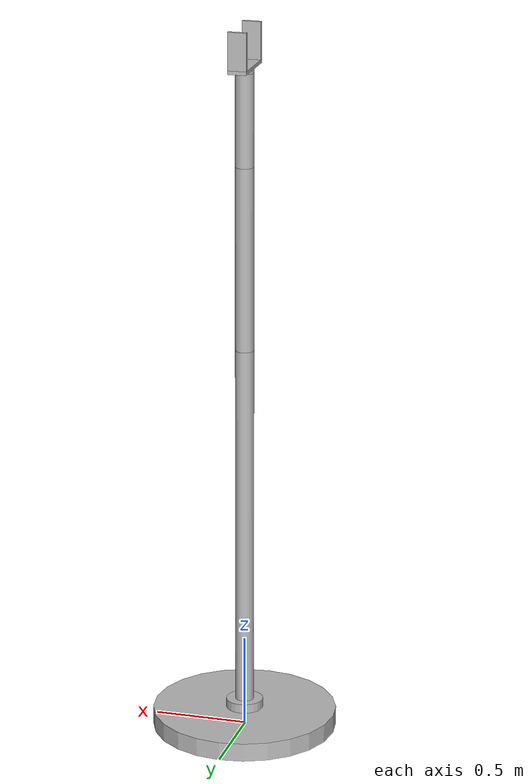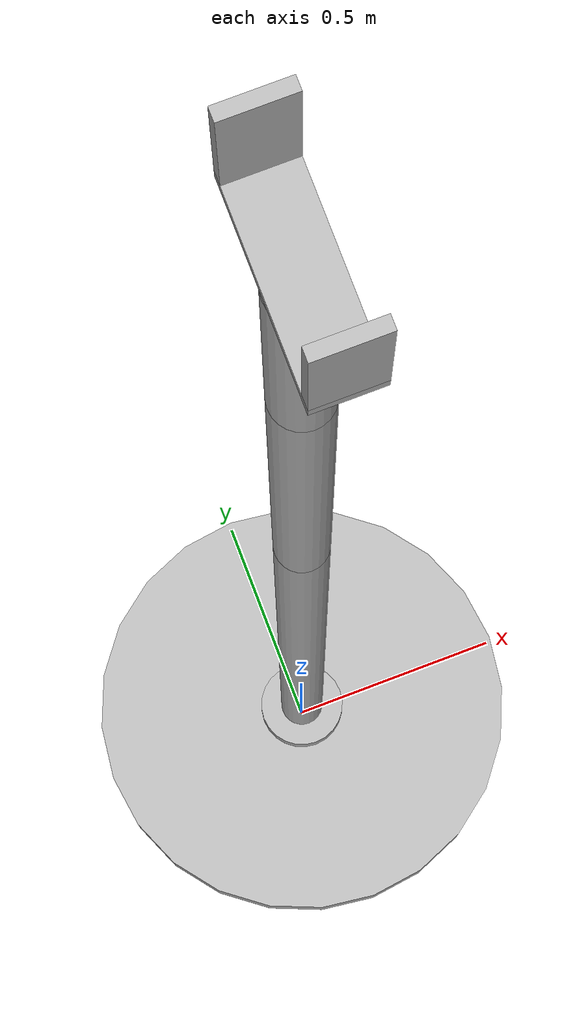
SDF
<?xml version='1.0'?>
<sdf version='1.4'>
    <model name="my_robot">
        <static>false</static>
        <self_collide>1</self_collide>
        <link name='chassis'>
            <pose>0 0 .05 0 0 0</pose>
            <inertial>
                <mass>50</mass>
            </inertial>
            <collision name='collision'>
                <geometry>
                    <cylinder>
                        <radius>.5</radius>
                        <length>.1</length>
                    </cylinder>
                </geometry>
            </collision>

            <visual name='visual'>
                <geometry>
                    <cylinder>
                        <radius>.5</radius>
                        <length>.1</length>
                    </cylinder>
                </geometry>
            </visual>
        </link>
        <link name='arm1'>
            <pose>0 0 .125 0 0 0</pose>
            <inertial>
                <mass>.05</mass>
            </inertial>
            <collision name='collision'>
                <geometry>
                    <cylinder>
                        <radius>.1</radius>
                        <length>.05</length>
                    </cylinder>
                </geometry>
            </collision>

            <visual name='visual'>
                <geometry>
                    <cylinder>
                        <radius>.1</radius>
                        <length>.05</length>
                    </cylinder>
                </geometry>
            </visual>
        </link>
        <link name='arm2'>
            <pose>0 0 1.15 0 0 0</pose>
            <inertial>
                <mass>0.5</mass>
            </inertial>
            <collision name='collision'>
                <geometry>
                    <cylinder>
                        <radius>.05</radius>
                        <length>2.0</length>
                    </cylinder>
                </geometry>
            </collision>

            <visual name='visual'>
                <geometry>
                    <cylinder>
                        <radius>.05</radius>
                        <length>2.0</length>
                    </cylinder>
                </geometry>
            </visual>
        </link>
        <link name="arm3">
            <pose>0 0 2.65 0 0 0</pose>
            <inertial>
                <mass>0.25</mass>
            </inertial>
            <collision name="collision">
                <geometry>
                    <cylinder>
                        <radius>.05</radius>
                        <length>1</length>
                    </cylinder>
                </geometry>
            </collision>
            <visual name="visual">
                <geometry>
                    <cylinder>
                        <radius>.05</radius>
                        <length>1</length>
                    </cylinder>
                </geometry>
            </visual>
        </link>
        <link name="arm4">
            <pose>0 0 3.4 0 0 0</pose>
            <inertial>
                <mass>.125</mass>
            </inertial>
            <collision name="collision">
                <geometry>
                    <cylinder>
                        <radius>.05</radius>
                        <length>0.5</length>
                    </cylinder>
                </geometry>
            </collision>
            <visual name="visual">
                <geometry>
                    <cylinder>
                        <radius>.05</radius>
                        <length>0.5</length>
                    </cylinder>
                </geometry>
            </visual>
        </link>
        <link name="arm5">
            <pose>0 0 3.66 0 0 0</pose>
            <inertial>
                <mass>.005</mass>
            </inertial>
            <collision name="collision">
                <geometry>
                    <cylinder>
                        <radius>.05</radius>
                        <length>.02</length>
                    </cylinder>
                </geometry>
            </collision>
            <visual name="visual">
                <geometry>
                    <cylinder>
                        <radius>.05</radius>
                        <length>.02</length>
                    </cylinder>
                </geometry>
            </visual>
        </link>
        <link name="arm6">
            <pose>0 0 3.68 0 0 0</pose>
            <inertial>
                <mass>.005</mass>
            </inertial>
            <collision name="collision">
                <geometry>
                    <box>
                        <size>.1 .3 .02</size>
                    </box>
                </geometry>
            </collision>
            <visual name="visual">
                <geometry>
                    <box>
                        <size>.1 .3 .02</size>
                    </box>
                </geometry>
            </visual>
        </link>
        <link name="arm7">
            <pose>0 0.14 3.79 0 0 0</pose>
            <inertial>
                <mass>.005</mass>
            </inertial>
            <collision name="collision">
                <geometry>
                    <box>
                        <size>.1 .02 .2</size>
                    </box>
                </geometry>
                <surface>
                    <friction>
                        <ode>
                            <mu>500</mu>
                            <mu2>500</mu2>
                            <slip1>0.0</slip1>
                            <slip2>0.0</slip2>
                        </ode>
                    </friction>
                    <contact>
                        <ode>
                            <min_depth>5</min_depth>
                            <kp>1e8</kp>
                        </ode>
                    </contact>
                </surface>
            </collision>
            <visual name="visual">
                <geometry>
                    <box>
                        <size>.1 .02 .2</size>
                    </box>
                </geometry>
            </visual>
        </link>
        <link name="arm8">
            <pose>0 -0.14 3.79 0 0 0</pose>
            <inertial>
                <mass>.005</mass>
            </inertial>
            <collision name="collision">
                <geometry>
                    <box>
                        <size>.1 .02 .2</size>
                    </box>
                </geometry>
                <surface>
                    <friction>
                        <ode>
                            <mu>500</mu>
                            <mu2>500</mu2>
                            <slip1>0.0</slip1>
                            <slip2>0.0</slip2>
                        </ode>
                    </friction>
                     <contact>
                        <ode>
                            <min_depth>5</min_depth>
                            <kp>1e8</kp>
                        </ode>
                    </contact>
                </surface>
            </collision>
            <visual name="visual">
                <geometry>
                    <box>
                        <size>.1 .02 .2</size>
                    </box>
                </geometry>
            </visual>
        </link>
        <joint type="revolute" name="chasis_arm1_joint">
            <pose>0 0 -0.025 0 0 0</pose>
            <child>arm1</child>
            <parent>chassis</parent>
            <axis>
                <xyz>0 0 1</xyz>
                <dynamics>
                    <damping>2.0</damping>
                    <friction>0.7</friction>
                </dynamics>
                <limit>
                    <effort>100</effort>
                    <velocity>1.0</velocity>
                </limit>
            </axis>
        </joint>
        <joint type="revolute" name="arm1_arm2_joint">
            <pose>0 0 -1 0 0 0</pose>
            <child>arm2</child>
            <parent>arm1</parent>
            <axis>
                <xyz>1 0 0</xyz>
                <dynamics>
                    <damping>1.0</damping>
                    <friction>0.3</friction>
                </dynamics>
                <limit>
                    <lower>-1.0</lower>
                    <upper>1.0</upper>
                    <effort>100</effort>
                    <velocity>1.0</velocity>
                </limit>
            </axis>
        </joint>
        <joint name="arm2_arm3_joint" type="revolute">
            <parent> arm2 </parent>
            <child> arm3 </child>
            <pose> 0 0 -0.5 0 0 0</pose>
            <axis>
                <xyz> 1 0 0  </xyz>
                <dynamics>
                    <damping>1.0</damping>
                    <friction>0.3</friction>
                </dynamics>
                <limit>
                    <effort>100</effort>
                    <velocity>1.0</velocity>
                </limit>
            </axis>
        </joint>
        <joint name="arm3_arm4_joint" type="revolute">
            <parent> arm3 </parent>
            <child> arm4 </child>
            <pose> 0 0 -0.25 0 0 0</pose>
            <axis>
                <xyz> 1 0 0  </xyz>
                <dynamics>
                    <damping>1.0</damping>
                    <friction>0.3</friction>
                </dynamics>
                <limit>
                    <effort>100</effort>
                    <velocity>1.0</velocity>
                </limit>
            </axis>
        </joint>
        <joint name="arm4_arm5_joint" type="revolute">
            <parent> arm4 </parent>
            <child> arm5 </child>
            <pose> 0 0 -0.01 0 0 0</pose>
            <axis>
                <xyz> 0 0 1  </xyz>
                <dynamics>
                    <damping>1.0</damping>
                    <friction>0.3</friction>
                </dynamics>
                <limit>
                    <effort>100</effort>
                    <velocity>1.0</velocity>
                </limit>
            </axis>
        </joint>
        <joint name="arm5_arm6_joint" type="revolute">
            <parent> arm5 </parent>
            <child> arm6 </child>
            <pose> 0 0 -0.01 0 0 0</pose>
            <axis>
                <xyz> 1 0 0  </xyz>
                <dynamics>
                    <damping>1.0</damping>
                    <friction>0.3</friction>
                </dynamics>
                <limit>
                    <effort>100</effort>
                    <velocity>1.0</velocity>
                </limit>
            </axis>
        </joint>
        <joint name="arm6_arm7_joint" type="revolute">
            <parent> arm6 </parent>
            <child> arm7 </child>
            <pose> 0 0 -0.1 0 0 0</pose>
            <axis>
                <xyz> 1 0 0</xyz>
                <dynamics>
                    <damping>1.0</damping>
                    <friction>0.3</friction>
                </dynamics>
                <limit>
                    <lower>-0.7</lower>
                    <upper>0.7</upper>
                    <effort>100</effort>
                    <velocity>1.0</velocity>
                </limit>
            </axis>
        </joint>
        <joint name="arm6_arm8_joint" type="revolute">
            <parent> arm6 </parent>
            <child> arm8 </child>
            <pose> 0 0 -0.1 0 0 0</pose>
            <axis>
                <xyz> 1 0 0 </xyz>
                <dynamics>
                    <damping>1.0</damping>
                    <friction>0.3</friction>
                </dynamics>
                <limit>
                    <lower>-0.7</lower>
                    <upper>0.7</upper>
                    <effort>100</effort>
                    <velocity>1.0</velocity>
                </limit>
            </axis>
        </joint>
        <plugin name="arm_control" filename="libarm_gazebo.so" />
        <plugin name="grip_control" filename="libgripper_controller.so" />

    </model>
</sdf>
